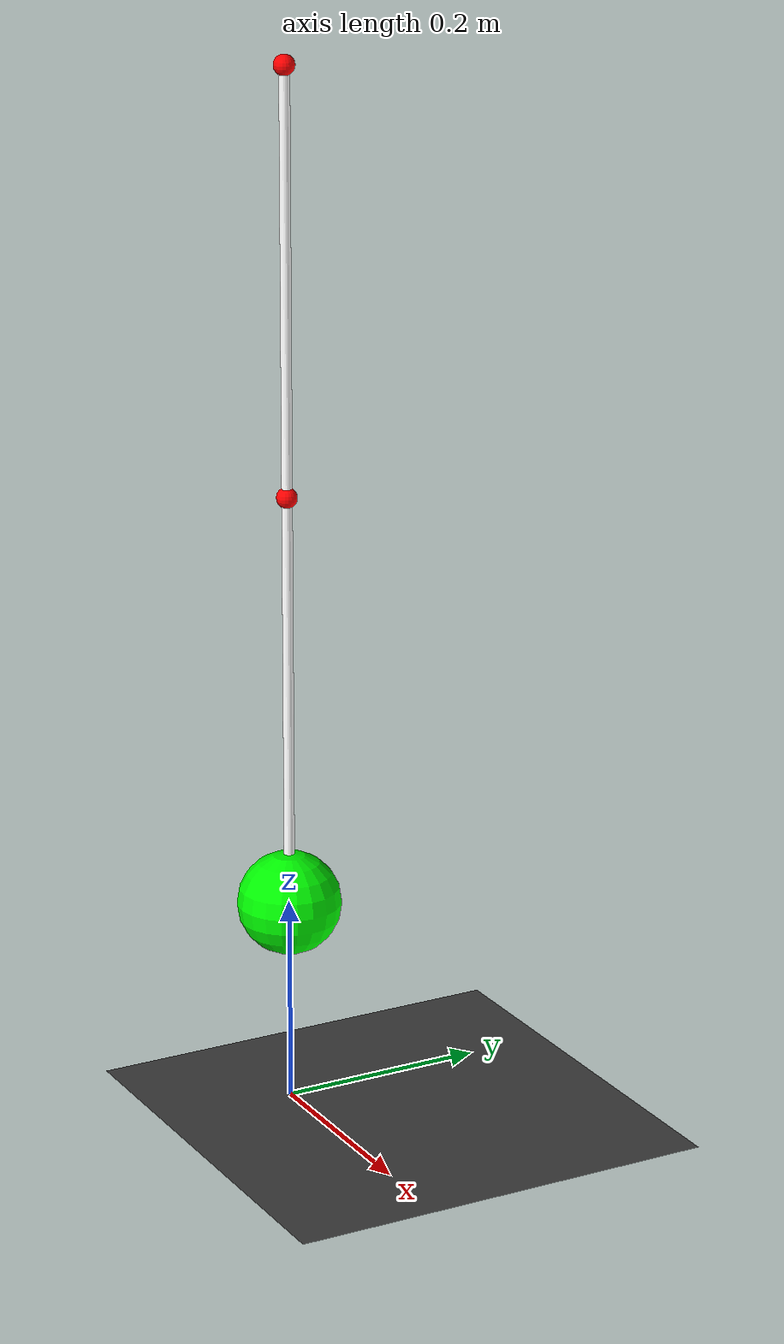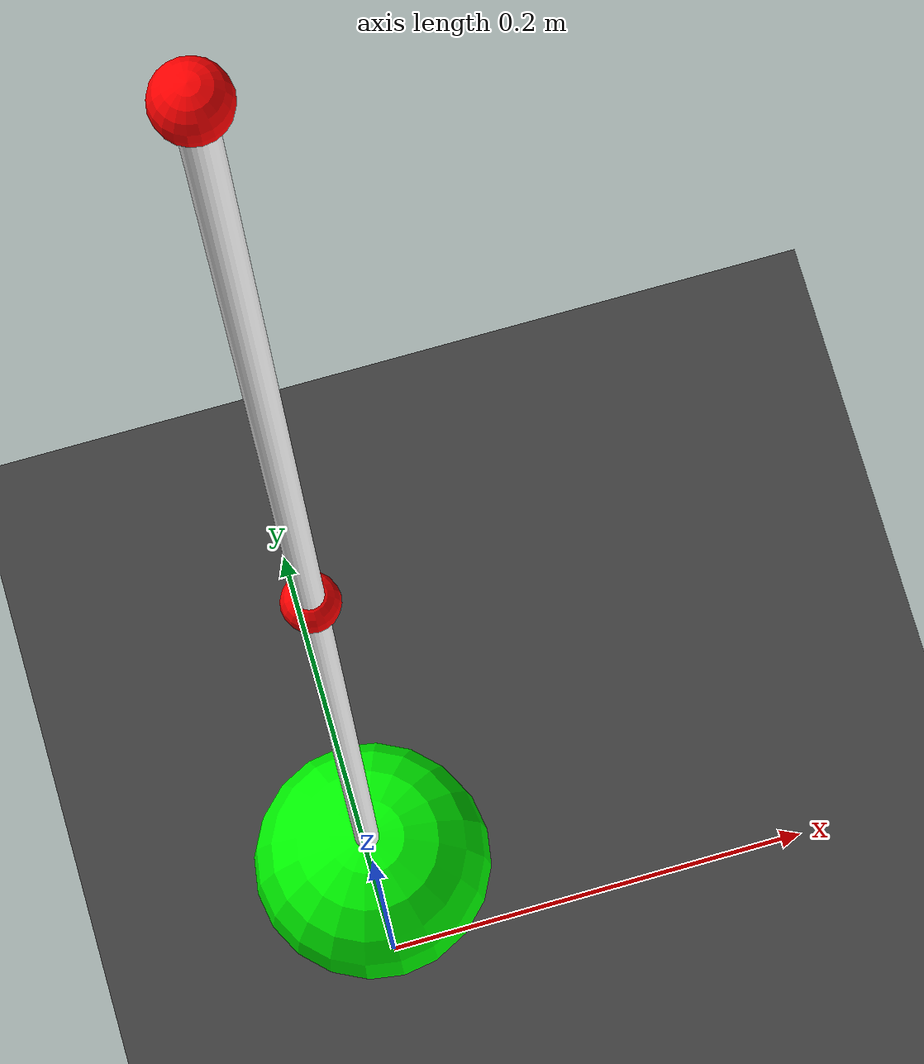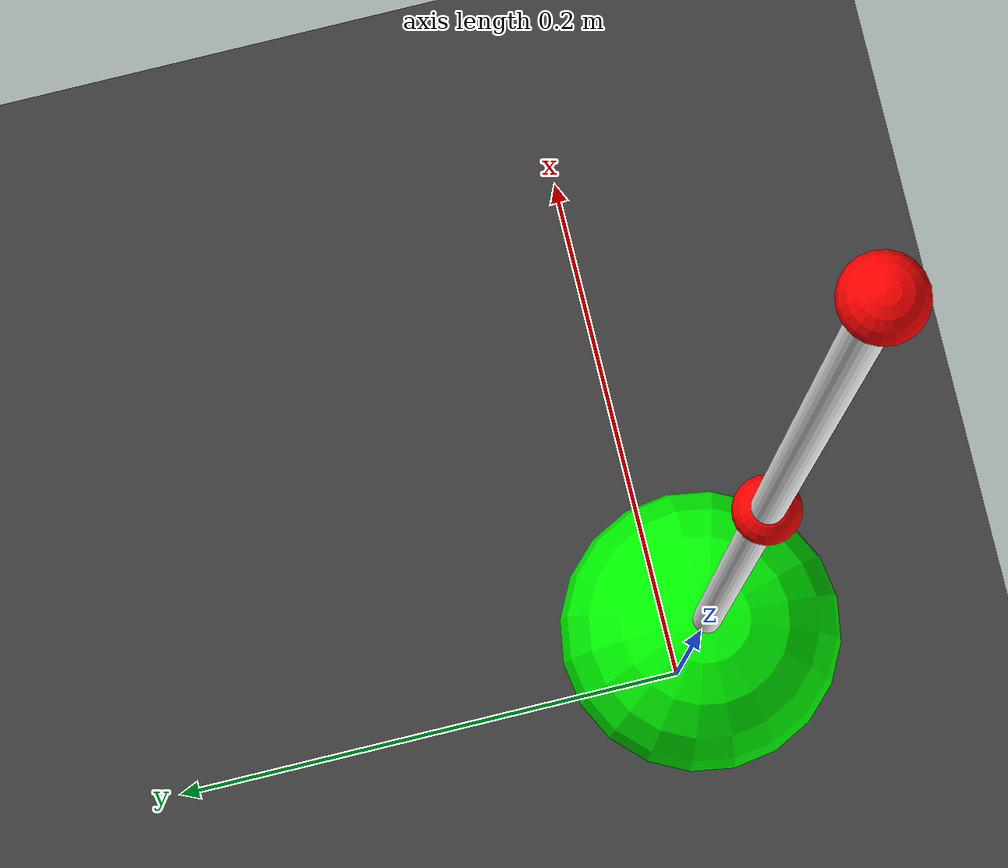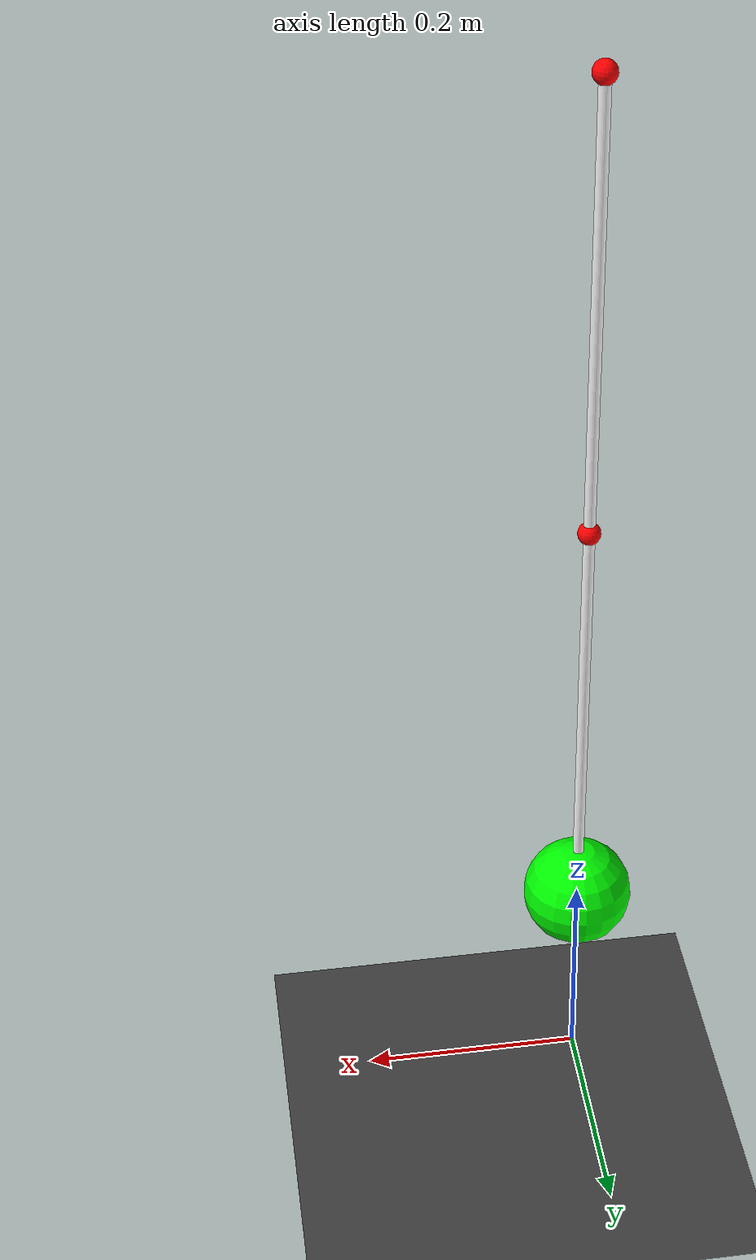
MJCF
<mujoco model="DoublePendulum">
    <compiler angle="radian"/>
    <option gravity='0 0 -9.806' timestep="0.0005" iterations="50">
        <flag sensornoise="enable"/>
    </option>
    <asset>
        <texture type='skybox' builtin='gradient' width='128' height='128' rgb1='0.4 0.6 0.8' rgb2='0 0 0'/>
        <texture name='plane' type='2d' builtin='checker' rgb1='0.2 0.2 0.2' rgb2='0.3 0.3 0.3' width='512' height='512'/>
        <material name='plane' reflectance='0.0' texture='plane' texrepeat='1 1' texuniform='true'/>
    </asset>

    <worldbody>
        <light directional="true" cutoff="4" exponent="20" diffuse="1 1 1" specular="0 0 0" pos=".9 .3 2.5" dir="-.9 -.3 -2.5 "/>
        <geom name='floor' type='plane' conaffinity='15' condim='3' material='plane' pos='0 0 0' size='1 1 0.125'/>
        <body name="rod1" pos="0 0 0.2" euler="0 0 0">
            <geom name="base" type="sphere" rgba='0 1 0 1' pos="0 0 0" size=".05"/>
            <geom name="rod1" type="cylinder" rgba='1 1 1 1' pos="0 0 0.2" size=".005 .2" mass="1"/>
            <site name='joint1' pos='0 0 0.4' size='0.01' rgba='1 0 0 1'/>
            <joint name="pivot1" pos="0 0 0" axis="0 1 0" limited="false" damping=".05"/>
            <body name="rod2" pos="0 0 0.4" euler="0 0 0">
                <joint name="pivot2" pos="0 0 0" axis="0 1 0" limited="false" damping=".05"/>
                <geom name="rod2" type="cylinder" rgba='1 1 1 1' pos="0 0 0.2" size=".005 .2" mass="1"/>
                <site name='EndEffector' pos='0 0 0.4' size='0.01' rgba='1 0 0 1'/>
            </body>
        </body>
    </worldbody>

    <actuator>
        <motor joint='pivot1' name='motor1' gear="1" forcelimited="true" forcerange="-10 10"/>
        <motor joint='pivot2' name='motor2' gear="1" forcelimited="true" forcerange="-10 10"/>
    </actuator>
    <sensor>
        <jointpos name="q1" joint="pivot1" noise="0.001"/>
        <jointpos name="q2" joint="pivot2" noise="0.001"/>
        <jointvel name='dq1' joint='pivot1' noise="0.001"/>
        <jointvel name='dq2' joint='pivot2' noise="0.001"/>
    </sensor>

</mujoco>
